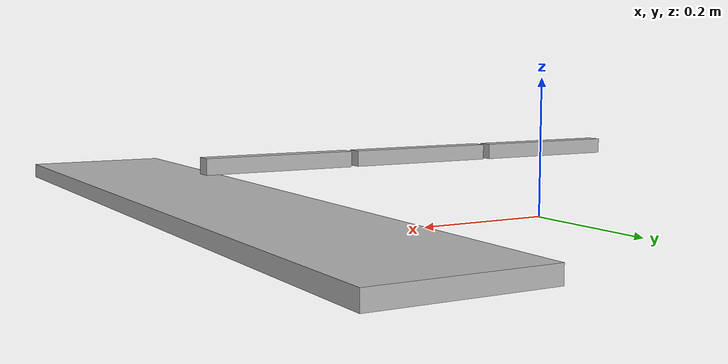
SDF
<?xml version='1.0'?>
<sdf version='1.5'>
  <model name="rod">
    <static>false</static>
    <self_collide>true</self_collide>

    <joint name="joint_1_world" type="fixed">
      <pose>0 0 1 0 0 0</pose>
      <child>link_01</child>
      <parent>world</parent>
    </joint>

    <link name='link_01'>
      <gravity>false</gravity>
      <pose>0 0 .1 0 0 0</pose>
      <collision name='collision'>
        <geometry>
          <box>
            <size>.2 .02 .02</size>
          </box>
        </geometry>
      </collision>
      <visual name='visual'>
        <geometry>
          <box>
            <size>.2 .02 .02</size>
          </box>
        </geometry>
      </visual>
    </link>

    <link name="link_02">
      <gravity>false</gravity>
      <pose>0.21 0 .1 0 0 0</pose>
      <collision name="collision">
        <geometry>
          <box>
            <size>.2 .02 .02</size>
          </box>
        </geometry>
      </collision>
      <visual name="visual">
        <geometry>
          <box>
            <size>.2 .02 .02</size>
          </box>
        </geometry>
      </visual>
    </link>

    <joint type="revolute2" name="joint_1_2">
      <pose>-0.105 0 0 0 0 0</pose>
      <child>link_02</child>
      <parent>link_01</parent>
      <axis>
        <xyz>0 1 0</xyz>
      </axis>
      <axis2>
        <xyz>0 0 1</xyz>
      </axis2>
    </joint>

    <link name="link_03">
      <gravity>true</gravity>
      <pose>0.42 0 0.1 0 0 0</pose>
      <collision name="collision">
        <geometry>
          <box>
            <size>.2 .02 .02</size>
          </box>
        </geometry>
      </collision>
      <visual name="visual">
        <geometry>
          <box>
            <size>.2 .02 .02</size>
          </box>
        </geometry>
      </visual>
    </link>

    <link name="link_04">
      <gravity>true</gravity>
      <pose>0.5 0 0.05 0 0 0</pose>
      <collision name="collision">
        <geometry>
          <box>
            <size>.2 1 .02</size>
          </box>
        </geometry>
      </collision>
      <visual name="visual">
        <geometry>
          <box>
            <size>.2 1 .02</size>
          </box>
        </geometry>
      </visual>
    </link>

    <joint type="ball" name="joint_2_3">
      <pose>-0.105 0 0 0 0 0</pose>
      <child>link_03</child>
      <parent>link_02</parent>
    </joint>

  </model>
</sdf>
